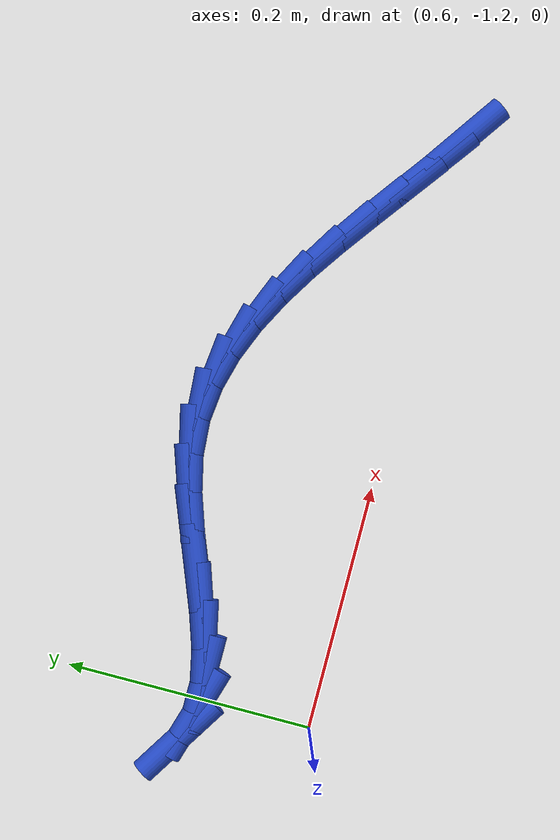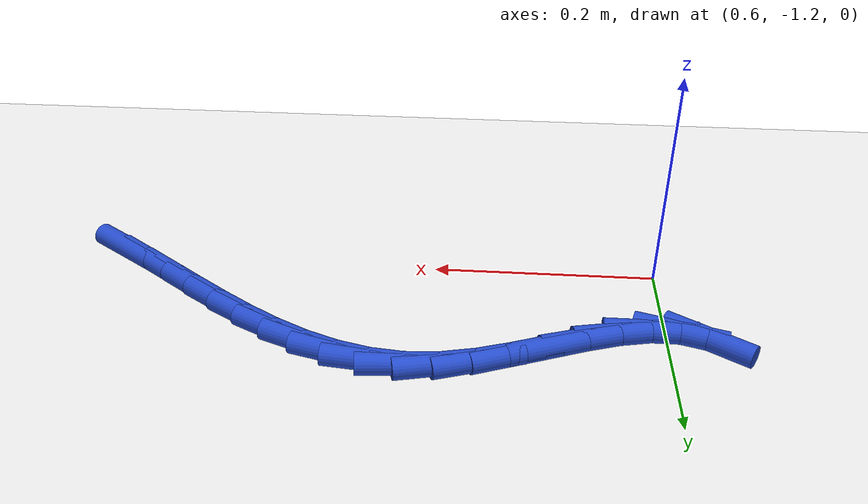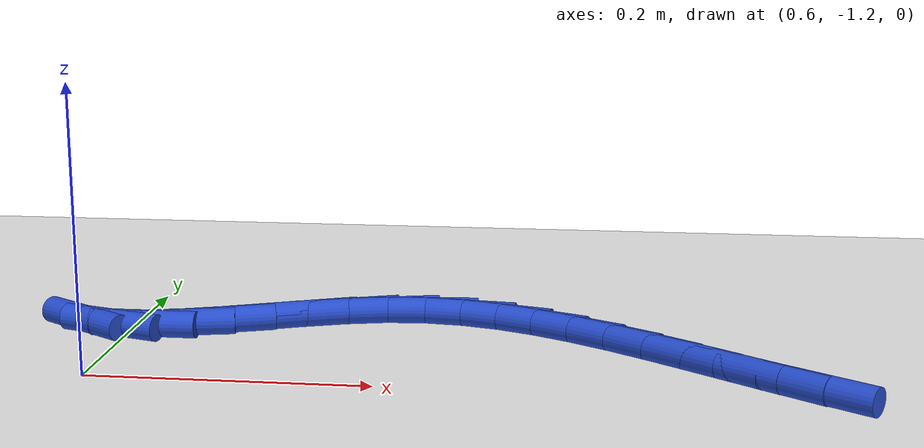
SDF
<sdf version="1.6">
 <world name="default">
  <model name="ground_plane">
   <static>1</static>
   <link name="link">
    <collision name="collision">
     <geometry><plane><normal>0 0 1</normal><size>100 100</size></plane></geometry>
     <surface><friction><ode><mu>100</mu><mu2>50</mu2></ode></friction></surface>
    </collision>
    <visual name="visual">
     <cast_shadows>0</cast_shadows>
     <geometry><plane><normal>0 0 1</normal><size>100 100</size></plane></geometry>
     <material>
      <script><uri>file://media/materials/scripts/gazebo.material</uri><name>Gazebo/WhiteGlow</name></script>
     </material>
    </visual>
   </link>
  </model>
  <model name="line">
   <link name="link_179">
    <pose>1.0887955274576666 -1.1989226659706198 0.01 0 1.57 -0.6125760308537554</pose>
    <collision name="collision">
     <geometry><cylinder><radius>0.01</radius><length>0.08</length></cylinder></geometry>
    </collision>
    <visual name="visual">
     <material>
      <script><name>Gazebo/Blue</name><uri>file://media/materials/scripts/gazebo.material</uri></script>
     </material>
     <geometry><cylinder><radius>0.01</radius><length>0.08</length></cylinder></geometry>
    </visual>
   </link>
   <link name="link_180">
    <pose>1.062705079561919 -1.180587338196215 0.01 0 1.57 -0.6396341335418092</pose>
    <collision name="collision">
     <geometry><cylinder><radius>0.01</radius><length>0.08</length></cylinder></geometry>
    </collision>
    <visual name="visual">
     <material>
      <script><name>Gazebo/Blue</name><uri>file://media/materials/scripts/gazebo.material</uri></script>
     </material>
     <geometry><cylinder><radius>0.01</radius><length>0.08</length></cylinder></geometry>
    </visual>
   </link>
   <link name="link_181">
    <pose>1.0366389590015157 -1.1611947884841414 0.01 0 1.57 -0.6477077741337914</pose>
    <collision name="collision">
     <geometry><cylinder><radius>0.01</radius><length>0.08</length></cylinder></geometry>
    </collision>
    <visual name="visual">
     <material>
      <script><name>Gazebo/Blue</name><uri>file://media/materials/scripts/gazebo.material</uri></script>
     </material>
     <geometry><cylinder><radius>0.01</radius><length>0.08</length></cylinder></geometry>
    </visual>
   </link>
   <link name="link_182">
    <pose>1.0105154373233298 -1.1414298950771848 0.01 0 1.57 -0.6375129777224935</pose>
    <collision name="collision">
     <geometry><cylinder><radius>0.01</radius><length>0.08</length></cylinder></geometry>
    </collision>
    <visual name="visual">
     <material>
      <script><name>Gazebo/Blue</name><uri>file://media/materials/scripts/gazebo.material</uri></script>
     </material>
     <geometry><cylinder><radius>0.01</radius><length>0.08</length></cylinder></geometry>
    </visual>
   </link>
   <link name="link_183">
    <pose>0.9842527860742345 -1.121977536218132 0.01 0 1.57 -0.6086065197380535</pose>
    <collision name="collision">
     <geometry><cylinder><radius>0.01</radius><length>0.08</length></cylinder></geometry>
    </collision>
    <visual name="visual">
     <material>
      <script><name>Gazebo/Blue</name><uri>file://media/materials/scripts/gazebo.material</uri></script>
     </material>
     <geometry><cylinder><radius>0.01</radius><length>0.08</length></cylinder></geometry>
    </visual>
   </link>
   <link name="link_184">
    <pose>0.9577692768011032 -1.1035225901497694 0.01 0 1.57 -0.55944036767211</pose>
    <collision name="collision">
     <geometry><cylinder><radius>0.01</radius><length>0.08</length></cylinder></geometry>
    </collision>
    <visual name="visual">
     <material>
      <script><name>Gazebo/Blue</name><uri>file://media/materials/scripts/gazebo.material</uri></script>
     </material>
     <geometry><cylinder><radius>0.01</radius><length>0.08</length></cylinder></geometry>
    </visual>
   </link>
   <link name="link_185">
    <pose>0.930983181050808 -1.0867499351148824 0.01 0 1.57 -0.48750706537325517</pose>
    <collision name="collision">
     <geometry><cylinder><radius>0.01</radius><length>0.08</length></cylinder></geometry>
    </collision>
    <visual name="visual">
     <material>
      <script><name>Gazebo/Blue</name><uri>file://media/materials/scripts/gazebo.material</uri></script>
     </material>
     <geometry><cylinder><radius>0.01</radius><length>0.08</length></cylinder></geometry>
    </visual>
   </link>
   <link name="link_186">
    <pose>0.9038127703702239 -1.0723444493562586 0.01 0 1.57 -0.38979376619937306</pose>
    <collision name="collision">
     <geometry><cylinder><radius>0.01</radius><length>0.08</length></cylinder></geometry>
    </collision>
    <visual name="visual">
     <material>
      <script><name>Gazebo/Blue</name><uri>file://media/materials/scripts/gazebo.material</uri></script>
     </material>
     <geometry><cylinder><radius>0.01</radius><length>0.08</length></cylinder></geometry>
    </visual>
   </link>
   <link name="link_187">
    <pose>0.876176316306223 -1.0609910111166836 0.01 0 1.57 -0.2639357541467199</pose>
    <collision name="collision">
     <geometry><cylinder><radius>0.01</radius><length>0.08</length></cylinder></geometry>
    </collision>
    <visual name="visual">
     <material>
      <script><name>Gazebo/Blue</name><uri>file://media/materials/scripts/gazebo.material</uri></script>
     </material>
     <geometry><cylinder><radius>0.01</radius><length>0.08</length></cylinder></geometry>
    </visual>
   </link>
   <link name="link_188">
    <pose>0.8479920904056787 -1.0533744986389442 0.01 0 1.57 -0.11042352339329574</pose>
    <collision name="collision">
     <geometry><cylinder><radius>0.01</radius><length>0.08</length></cylinder></geometry>
    </collision>
    <visual name="visual">
     <material>
      <script><name>Gazebo/Blue</name><uri>file://media/materials/scripts/gazebo.material</uri></script>
     </material>
     <geometry><cylinder><radius>0.01</radius><length>0.08</length></cylinder></geometry>
    </visual>
   </link>
   <link name="link_189">
    <pose>0.819178364215464 -1.0501797901658259 0.01 0 1.57 0.06442147017817222</pose>
    <collision name="collision">
     <geometry><cylinder><radius>0.01</radius><length>0.08</length></cylinder></geometry>
    </collision>
    <visual name="visual">
     <material>
      <script><name>Gazebo/Blue</name><uri>file://media/materials/scripts/gazebo.material</uri></script>
     </material>
     <geometry><cylinder><radius>0.01</radius><length>0.08</length></cylinder></geometry>
    </visual>
   </link>
   <link name="link_190">
    <pose>0.7896549725447645 -1.0520843659341783 0.01 0 1.57 0.2244075071441846</pose>
    <collision name="collision">
     <geometry><cylinder><radius>0.01</radius><length>0.08</length></cylinder></geometry>
    </collision>
    <visual name="visual">
     <material>
      <script><name>Gazebo/Blue</name><uri>file://media/materials/scripts/gazebo.material</uri></script>
     </material>
     <geometry><cylinder><radius>0.01</radius><length>0.08</length></cylinder></geometry>
    </visual>
   </link>
   <link name="link_191">
    <pose>0.7595109911690573 -1.058964787701765 0.01 0 1.57 0.32490759381080214</pose>
    <collision name="collision">
     <geometry><cylinder><radius>0.01</radius><length>0.08</length></cylinder></geometry>
    </collision>
    <visual name="visual">
     <material>
      <script><name>Gazebo/Blue</name><uri>file://media/materials/scripts/gazebo.material</uri></script>
     </material>
     <geometry><cylinder><radius>0.01</radius><length>0.08</length></cylinder></geometry>
    </visual>
   </link>
   <link name="link_192">
    <pose>0.7291539861884284 -1.0691903888526388 0.01 0 1.57 0.37254348245691127</pose>
    <collision name="collision">
     <geometry><cylinder><radius>0.01</radius><length>0.08</length></cylinder></geometry>
    </collision>
    <visual name="visual">
     <material>
      <script><name>Gazebo/Blue</name><uri>file://media/materials/scripts/gazebo.material</uri></script>
     </material>
     <geometry><cylinder><radius>0.01</radius><length>0.08</length></cylinder></geometry>
    </visual>
   </link>
   <link name="link_193">
    <pose>0.6990267316377086 -1.0809638842141063 0.01 0 1.57 0.3729388600820686</pose>
    <collision name="collision">
     <geometry><cylinder><radius>0.01</radius><length>0.08</length></cylinder></geometry>
    </collision>
    <visual name="visual">
     <material>
      <script><name>Gazebo/Blue</name><uri>file://media/materials/scripts/gazebo.material</uri></script>
     </material>
     <geometry><cylinder><radius>0.01</radius><length>0.08</length></cylinder></geometry>
    </visual>
   </link>
   <link name="link_194">
    <pose>0.6695720015517261 -1.0924879886134764 0.01 0 1.57 0.322733172175199</pose>
    <collision name="collision">
     <geometry><cylinder><radius>0.01</radius><length>0.08</length></cylinder></geometry>
    </collision>
    <visual name="visual">
     <material>
      <script><name>Gazebo/Blue</name><uri>file://media/materials/scripts/gazebo.material</uri></script>
     </material>
     <geometry><cylinder><radius>0.01</radius><length>0.08</length></cylinder></geometry>
    </visual>
   </link>
   <link name="link_195">
    <pose>0.6412325699653101 -1.1019654168780568 0.01 0 1.57 0.20732767648105596</pose>
    <collision name="collision">
     <geometry><cylinder><radius>0.01</radius><length>0.08</length></cylinder></geometry>
    </collision>
    <visual name="visual">
     <material>
      <script><name>Gazebo/Blue</name><uri>file://media/materials/scripts/gazebo.material</uri></script>
     </material>
     <geometry><cylinder><radius>0.01</radius><length>0.08</length></cylinder></geometry>
    </visual>
   </link>
   <link name="link_196">
    <pose>0.6144512109132896 -1.1075988838351558 0.01 0 1.57 -0.00028678245029955895</pose>
    <collision name="collision">
     <geometry><cylinder><radius>0.01</radius><length>0.08</length></cylinder></geometry>
    </collision>
    <visual name="visual">
     <material>
      <script><name>Gazebo/Blue</name><uri>file://media/materials/scripts/gazebo.material</uri></script>
     </material>
     <geometry><cylinder><radius>0.01</radius><length>0.08</length></cylinder></geometry>
    </visual>
   </link>
   <link name="link_197">
    <pose>0.5896705066776227 -1.1075917771638801 0.01 0 1.57 -0.29450134984824117</pose>
    <collision name="collision">
     <geometry><cylinder><radius>0.01</radius><length>0.08</length></cylinder></geometry>
    </collision>
    <visual name="visual">
     <material>
      <script><name>Gazebo/Blue</name><uri>file://media/materials/scripts/gazebo.material</uri></script>
     </material>
     <geometry><cylinder><radius>0.01</radius><length>0.08</length></cylinder></geometry>
    </visual>
   </link>
   <link name="link_198">
    <pose>0.567157591489357 -1.1007631234952509 0.01 0 1.57 -0.568371478410049</pose>
    <collision name="collision">
     <geometry><cylinder><radius>0.01</radius><length>0.08</length></cylinder></geometry>
    </collision>
    <visual name="visual">
     <material>
      <script><name>Gazebo/Blue</name><uri>file://media/materials/scripts/gazebo.material</uri></script>
     </material>
     <geometry><cylinder><radius>0.01</radius><length>0.08</length></cylinder></geometry>
    </visual>
   </link>
  </model>
 </world>
</sdf>
